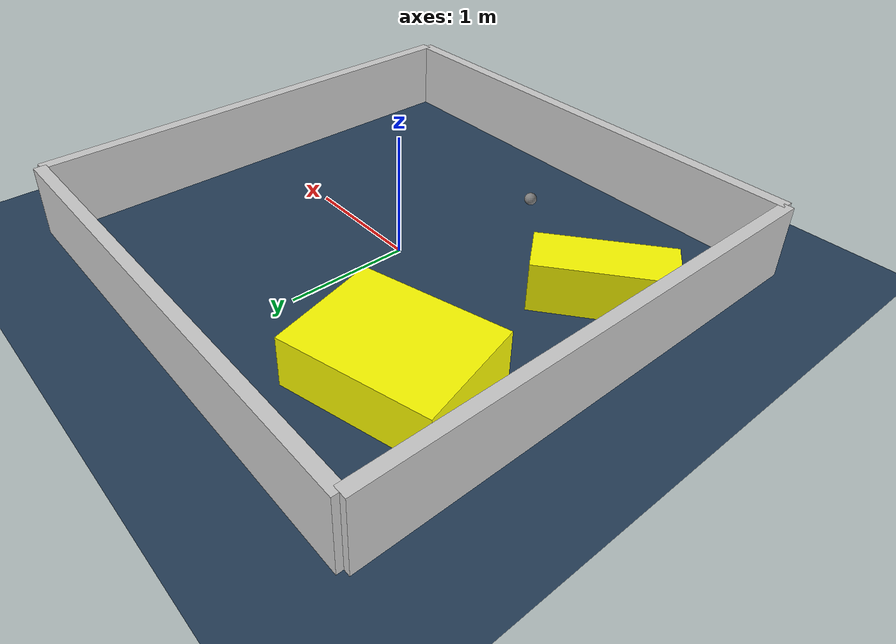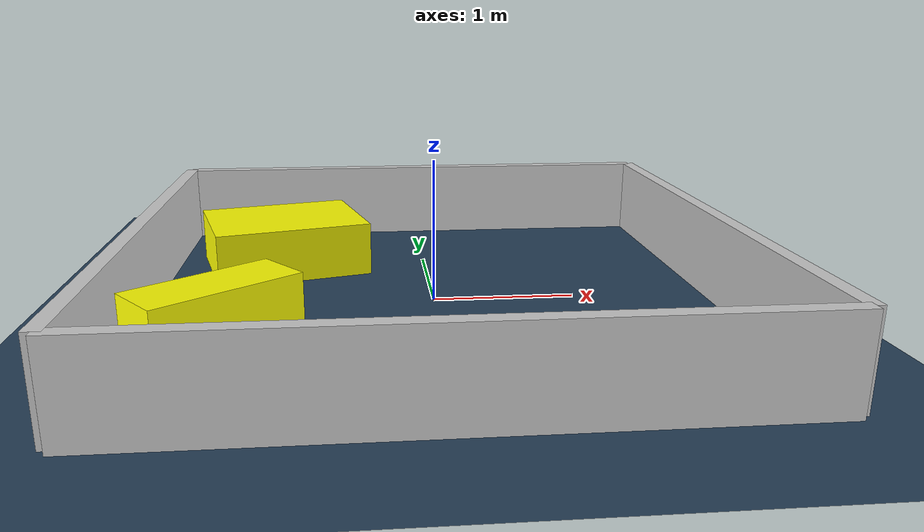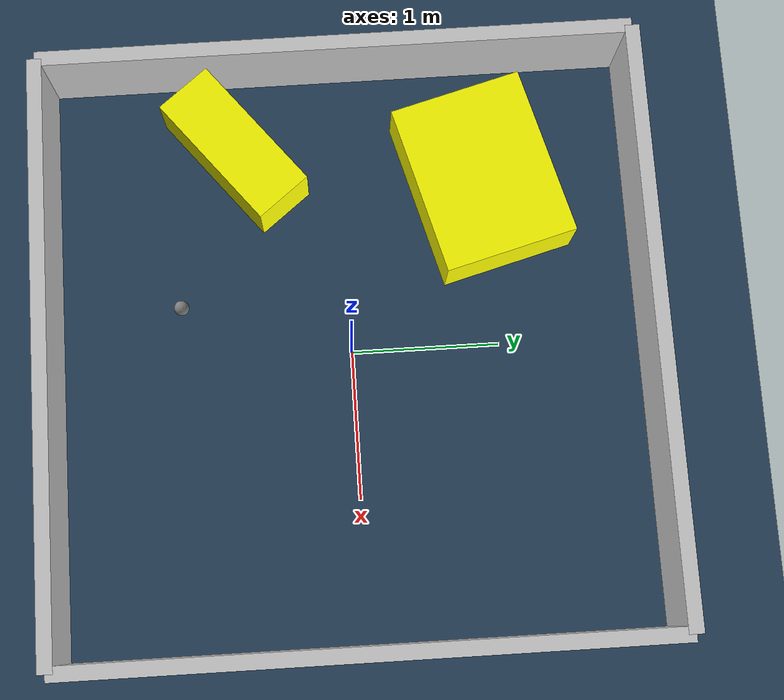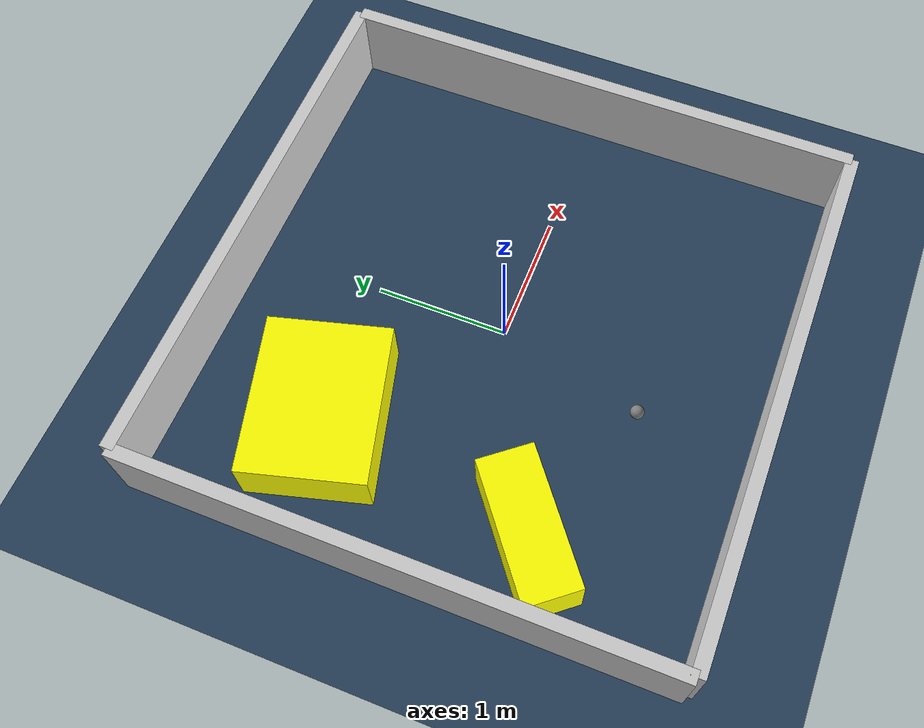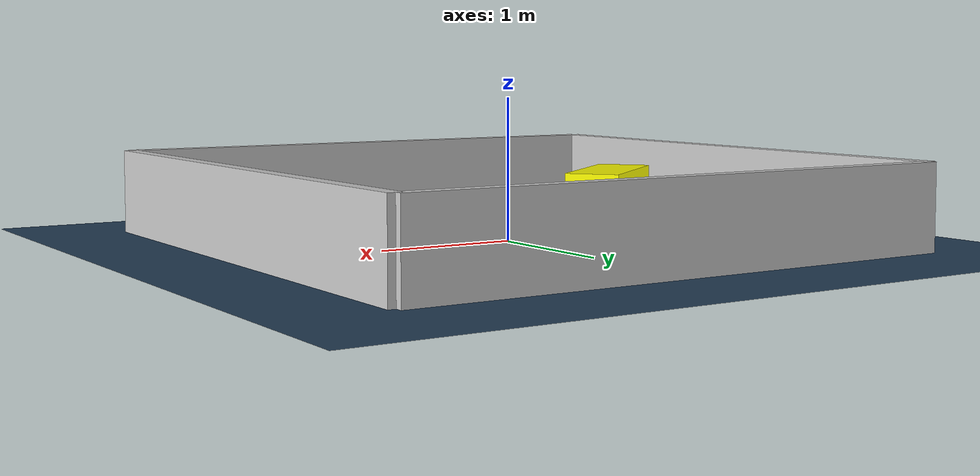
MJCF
<?xml version="1.0" ?>
<mujoco model="generated_environment">
  <option timestep="0.01" integrator="RK4" cone="elliptic"/>
  <default>
    <geom density="1"/>
  </default>
  <asset>
    <texture builtin="gradient" height="3072" rgb1="0.3 0.5 0.7" rgb2="0 0 0" type="skybox" width="512"/>
    <texture builtin="checker" height="300" mark="edge" markrgb="0.8 0.8 0.8" name="groundplane" rgb1="0.2 0.3 0.4" rgb2="0.1 0.2 0.3" type="2d" width="300"/>
    <material name="groundplane" reflectance="0.2" texrepeat="5 5" texture="groundplane" texuniform="true"/>
    <material name="robot" rgba="0.0 1.0 0.0 1"/>
  </asset>
  <worldbody>
    <light dir="0 0 -1" directional="true" pos="0 0 1.5"/>
    <geom condim="4" friction="1.0 0.005 0.001" material="groundplane" name="floor" size="0 0 0.05" type="plane"/>
    <body name="walls">
      <geom name="wall_1" condim="4" pos="-2.0 0.0 0.3" rgba="0.800000011920929 0.800000011920929 0.800000011920929 1.0" size="0.05 2.0 0.3" type="box"/>
      <geom name="wall_2" condim="4" pos="2.0 0.0 0.3" rgba="0.800000011920929 0.800000011920929 0.800000011920929 1.0" size="0.05 2.0 0.3" type="box"/>
      <geom name="wall_3" condim="4" pos="0.0 -2.0 0.3" rgba="0.800000011920929 0.800000011920929 0.800000011920929 1.0" size="2.0 0.05 0.3" type="box"/>
      <geom name="wall_4" condim="4" pos="0.0 2.0 0.3" rgba="0.800000011920929 0.800000011920929 0.800000011920929 1.0" size="2.0 0.05 0.3" type="box"/>
    </body>
    <body name="robot">
      <joint name="joint_x" type="slide" pos="0 0 0" axis="1 0 0"/>
      <joint name="joint_y" type="slide" pos="0 0 0" axis="0 1 0"/>
      <geom name="robot" type="sphere" pos="-0.33416910182522197 -1.1220271495033505 0.2" size="0.05" mass="5." friction="1.0 0.005 0.0001" condim="4"/>
      <site name="sensor_ball"/>
    </body>
    <body name="obstacle_1_movable">
      <geom name="obstacle_1_movable" condim="4" pos="-1.4132295177892176 -0.7144522860952949 0.2" euler="0 0 128.568120853124" friction="1.0 0.005 0.001" rgba="1 1 0 1" size="0.20830388204422265 0.5177453387829397 0.2" type="box" mass="0.1"/>
      <joint type="free"/>
    </body>
    <body name="obstacle_2_movable">
      <geom name="obstacle_2_movable" condim="4" pos="-1.1142029604360535 0.9518187887110772 0.2" euler="0 0 105.05981755002912" friction="1.0 0.005 0.001" rgba="1 1 0 1" size="0.4540449882864985 0.5837330772661584 0.2" type="box" mass="0.1"/>
      <joint type="free"/>
    </body>
  </worldbody>
  <actuator>
    <motor name="actuator_x" joint="joint_x" gear="1" ctrlrange="-1 1"/>
    <motor name="actuator_y" joint="joint_y" gear="1" ctrlrange="-1 1"/>
  </actuator>
</mujoco>
